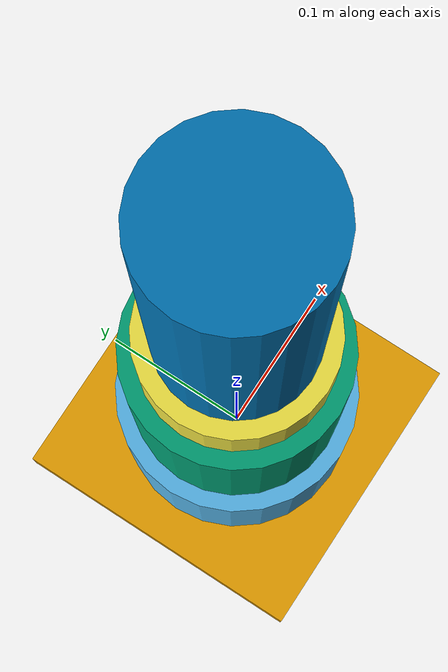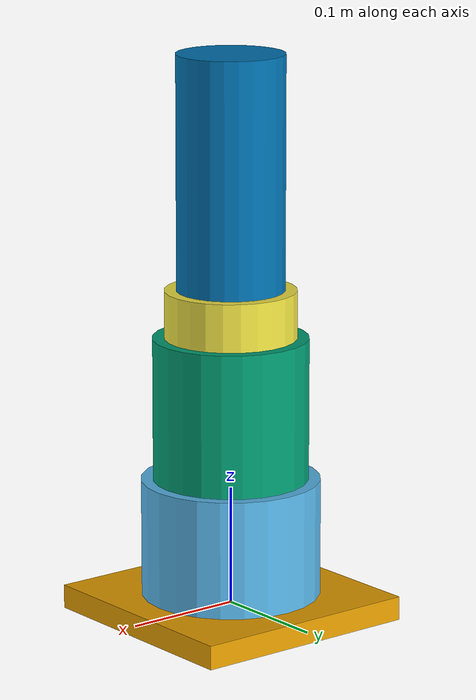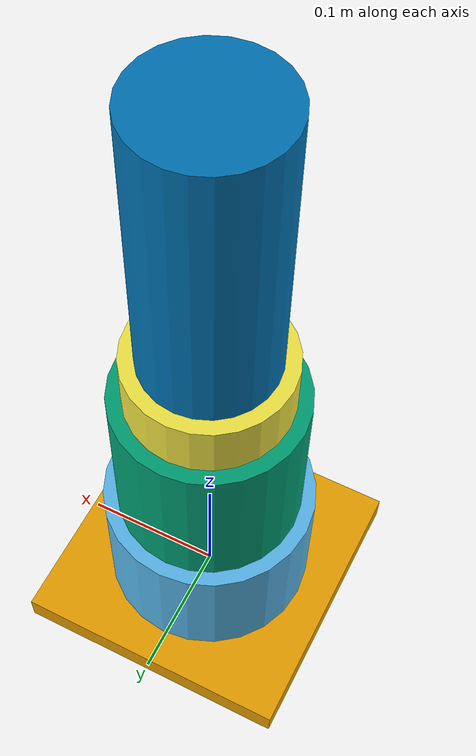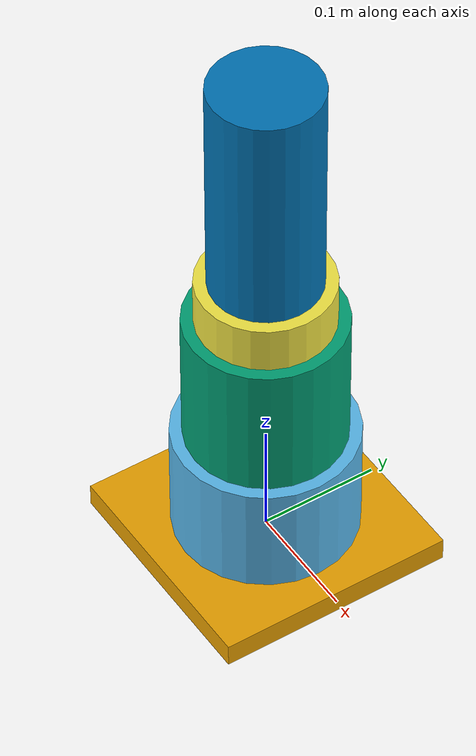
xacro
<?xml version="1.0" ?>

<robot name="myrobot" xmlns:xacro="http://www.ros.org/wiki/xacro">

    <link name="base">
        <visual>
            <geometry>
                <box size="0.2 0.2 0.02"/>
            </geometry>
        </visual>
    </link>

    <joint name="base_waist" type="revolute">
        <axis xyz="0 0 1"/>
        <limit lower="-1.5708" upper="1.5708" effort="1000.0" velocity="0.5"/>
        <origin xyz="0.0 0.0 0.01" rpy="0.0 0.0 0.0"/>
        <parent link="base"/>
        <child link="waist"/>
    </joint>

    <transmission name="trans1">
        <type>transmission_interface/SimpleTransmission</type>
        <joint name="base_waist">
            <hardwareInterface>EffortJointInterface</hardwareInterface>
        </joint>
        <actuator name="servo1">
            <hardwareInterface>EffortJointInterface</hardwareInterface>
            <mechanicalReduction>1</mechanicalReduction>
        </actuator>
    </transmission>

    <link name="waist">
        <visual>
            <origin xyz="0.0 0.0 0.0495" rpy="0.0 0.0 0.0"/>
            <geometry>
                <cylinder radius="0.075" length="0.099"/>
            </geometry>
        </visual>
    </link>

    <joint name="waist_forearm" type="revolute">
        <axis xyz="1 0.0 0.0"/>
        <limit lower="-1.5708" upper="1.5708" effort="1000.0" velocity="0.5"/>
        <origin xyz="0.0 0.0 0.099" rpy="0.0 0.0 0.0"/>
        <parent link="waist"/>
        <child link="forearm"/>
    </joint>

    <transmission name="trans2">
        <type>transmission_interface/SimpleTransmission</type>
        <joint name="waist_forearm">
            <hardwareInterface>EffortJointInterface</hardwareInterface>
        </joint>
        <actuator name="servo2">
            <hardwareInterface>EffortJointInterface</hardwareInterface>
            <mechanicalReduction>1</mechanicalReduction>
        </actuator>
    </transmission>

    <link name="forearm">
        <visual>
            <origin xyz="0.0 0.0 0.06" rpy="0.0 0.0 0.0"/>
            <geometry>
                <cylinder radius="0.065" length="0.120"/>
            </geometry>
        </visual>
    </link>

    <joint name="forearm_forearmRotation" type="revolute">
        <axis xyz="1 0.0 0.0"/>
        <limit lower="-1.5708" upper="1.5708" effort="1000.0" velocity="0.5"/>
        <origin xyz="0.0 0.0 0.120" rpy="0.0 0.0 0.0"/>
        <parent link="forearm"/>
        <child link="forearm_rotation"/>
    </joint>

    <transmission name="trans3">
        <type>transmission_interface/SimpleTransmission</type>
        <joint name="forearm_forearmRotation">
            <hardwareInterface>EffortJointInterface</hardwareInterface>
        </joint>
        <actuator name="servo3">
            <hardwareInterface>EffortJointInterface</hardwareInterface>
            <mechanicalReduction>1</mechanicalReduction>
        </actuator>
    </transmission>

    <link name="forearm_rotation">
        <visual>
            <origin xyz="0.0 0.0 0.02" rpy="0.0 0.0 0.0"/>
            <geometry>
                <cylinder radius="0.055" length="0.04"/>
            </geometry>
        </visual>
    </link>

    <joint name="forearmRotation_wrist" type="revolute">
        <axis xyz="1 0 0"/>
        <limit lower="-1.5708" upper="1.5708" effort="1000.0" velocity="0.5"/>
        <origin xyz="0.0 0.0 0.04" rpy="0.0 0.0 0.0"/>
        <parent link="forearm_rotation"/>
        <child link="wrist"/>
    </joint>

    <transmission name="trans4">
        <type>transmission_interface/SimpleTransmission</type>
        <joint name="forearmRotation_wrist">
            <hardwareInterface>EffortJointInterface</hardwareInterface>
        </joint>
        <actuator name="servo4">
            <hardwareInterface>EffortJointInterface</hardwareInterface>
            <mechanicalReduction>1</mechanicalReduction>
        </actuator>
    </transmission>

    <link name="wrist">
        <visual>
            <origin xyz="0.0 0.0 0.0975" rpy="0.0 0.0 0.0"/>
            <geometry>
                <cylinder radius="0.045" length="0.195"/>
            </geometry>
        </visual>
    </link>

    <joint name="wrist_wristRotation" type="revolute">
        <axis xyz="0.0 0.0 1"/>
        <limit lower="-1.5708" upper="1.5708" effort="1000.0" velocity="0.5"/>
        <origin xyz="0.0 0.0 0.195" rpy="0.0 0.0 0.0"/>
        <parent link="wrist"/>
        <child link="wrist_rotation"/>
    </joint>

    <transmission name="trans5">
        <type>transmission_interface/SimpleTransmission</type>
        <joint name="wrist_wristRotation">
            <hardwareInterface>EffortJointInterface</hardwareInterface>
        </joint>
        <actuator name="servo5">
            <hardwareInterface>EffortJointInterface</hardwareInterface>
            <mechanicalReduction>1</mechanicalReduction>
        </actuator>
    </transmission>

    <link name="wrist_rotation">

    </link>

    <gazebo>
        <plugin name="gazebo_ros_control" filename="libgazebo_ros_control.so">
            <robotnamespace>/myrobot</robotnamespace>
            <robotSimType>gazebo_ros_control/DefaultRobotHWSim</robotSimType>
        </plugin>
    </gazebo>

</robot>
